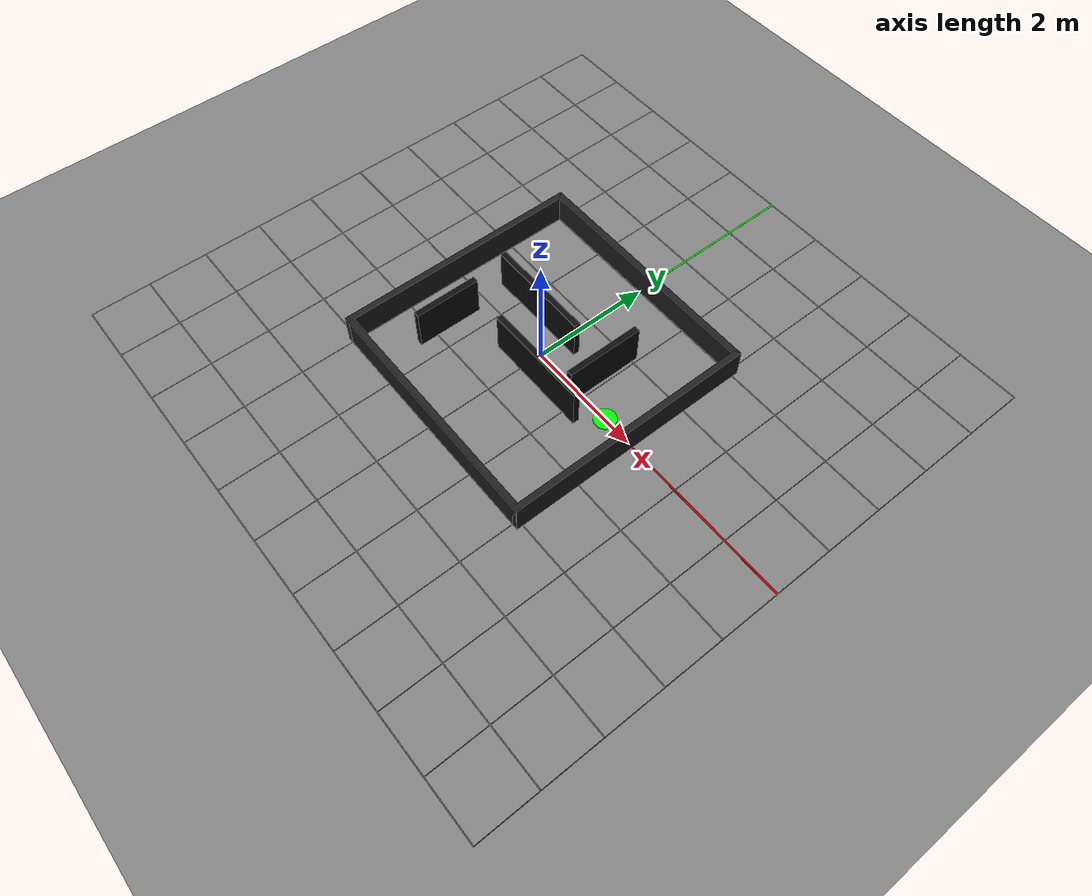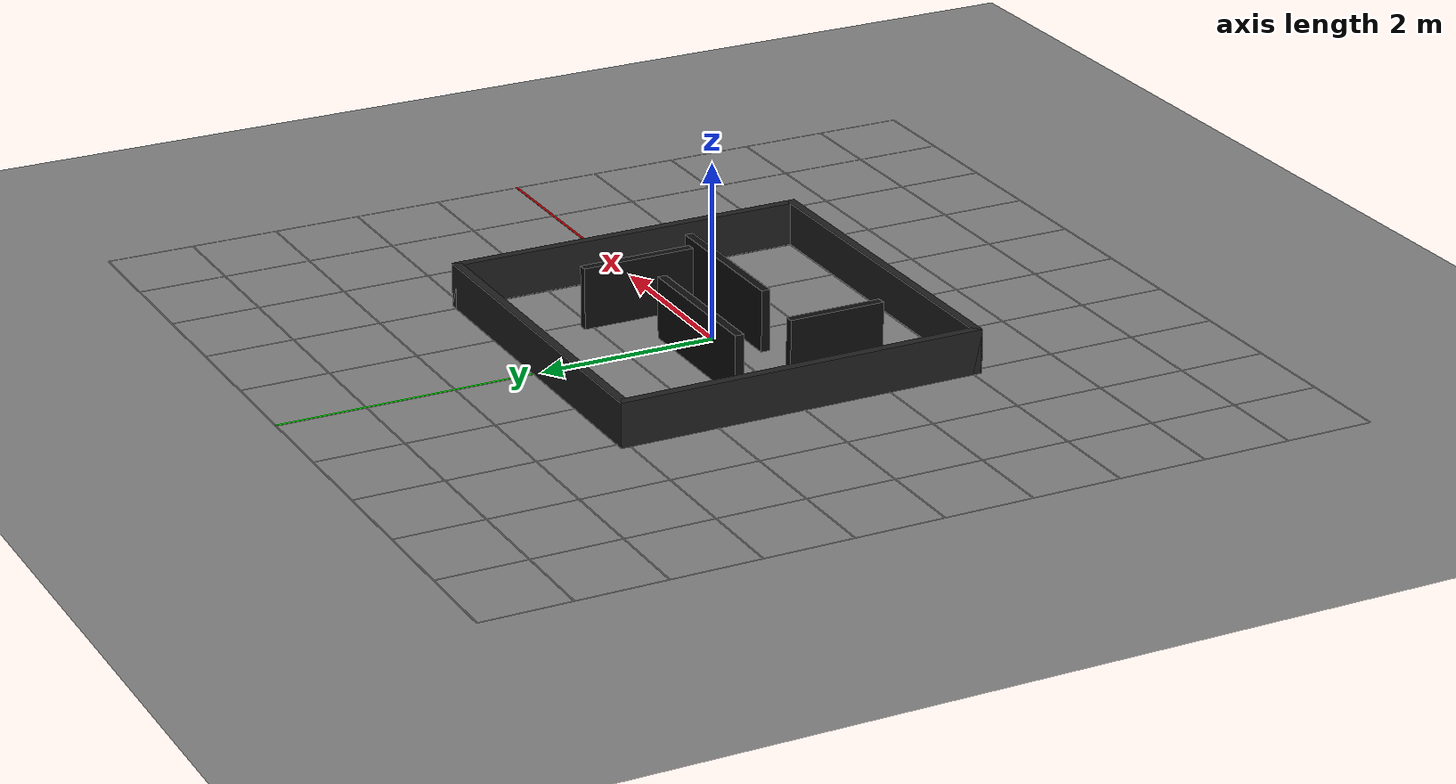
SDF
<?xml version="1.0" ?>
<sdf version="1.6">
    <world name="d3im3r_stage_07_simple_maze">

        <plugin name="gazebo_ros_state" filename="libgazebo_ros_state.so">
            <ros>
                <namespace>/gazebo</namespace>
            </ros>
            <update_rate>20.0</update_rate>
        </plugin>

        <light name="sun" type="directional">
            <cast_shadows>true</cast_shadows>
            <pose>0 0 10 0 0 0</pose>
            <diffuse>0.8 0.8 0.8 1</diffuse>
            <specular>0.2 0.2 0.2 1</specular>
            <direction>-0.5 0.1 -0.9</direction>
        </light>

        <model name="ground_plane">
            <static>true</static>
            <link name="link">
                <collision name="collision">
                    <geometry>
                        <plane>
                            <normal>0 0 1</normal>
                            <size>10 10</size>
                        </plane>
                    </geometry>
                </collision>
                <visual name="visual">
                    <geometry>
                        <plane>
                            <normal>0 0 1</normal>
                            <size>10 10</size>
                        </plane>
                    </geometry>
                    <material>
                        <ambient>0.5 0.5 0.5 1</ambient>
                        <diffuse>0.5 0.5 0.5 1</diffuse>
                    </material>
                </visual>
            </link>
        </model>

        <include>
            <uri>model://d3im3r_grid</uri>
            <pose>0 0 0 0 0 0</pose>
        </include>

        <include>
            <uri>model://d3im3r_arena_walls</uri>
            <pose>0 0 0 0 0 0</pose>
        </include>

        <model name="goal_marker">
    <static>false</static>

    <pose>1.5 0.0 0.03 0 0 0</pose>

    <link name="link">
        <gravity>false</gravity>
        <kinematic>true</kinematic>

        <visual name="visual">
            <geometry>
                <cylinder>
                    <radius>0.18</radius>
                    <length>0.02</length>
                </cylinder>
            </geometry>
            <material>
                <ambient>0.0 1.0 0.0 1.0</ambient>
                <diffuse>0.0 1.0 0.0 1.0</diffuse>
            </material>
        </visual>
    </link>
</model>

        <model name="wall_1">
            <static>true</static>
            <pose>-0.6 0.45 0.35 0 0 0</pose>
            <link name="link">
                <collision name="collision">
                    <geometry>
                        <box>
                            <size>1.80 0.10 0.70</size>
                        </box>
                    </geometry>
                </collision>
                <visual name="visual">
                    <geometry>
                        <box>
                            <size>1.80 0.10 0.70</size>
                        </box>
                    </geometry>
                    <material>
                        <ambient>0.05 0.05 0.05 1</ambient>
                        <diffuse>0.05 0.05 0.05 1</diffuse>
                    </material>
                </visual>
            </link>
        </model>

        <model name="wall_2">
            <static>true</static>
            <pose>0.35 -0.35 0.35 0 0 0</pose>
            <link name="link">
                <collision name="collision">
                    <geometry>
                        <box>
                            <size>1.80 0.10 0.70</size>
                        </box>
                    </geometry>
                </collision>
                <visual name="visual">
                    <geometry>
                        <box>
                            <size>1.80 0.10 0.70</size>
                        </box>
                    </geometry>
                    <material>
                        <ambient>0.05 0.05 0.05 1</ambient>
                        <diffuse>0.05 0.05 0.05 1</diffuse>
                    </material>
                </visual>
            </link>
        </model>

        <model name="wall_3">
            <static>true</static>
            <pose>0.9 0.45 0.35 0 0 1.5708</pose>
            <link name="link">
                <collision name="collision">
                    <geometry>
                        <box>
                            <size>1.30 0.10 0.70</size>
                        </box>
                    </geometry>
                </collision>
                <visual name="visual">
                    <geometry>
                        <box>
                            <size>1.30 0.10 0.70</size>
                        </box>
                    </geometry>
                    <material>
                        <ambient>0.05 0.05 0.05 1</ambient>
                        <diffuse>0.05 0.05 0.05 1</diffuse>
                    </material>
                </visual>
            </link>
        </model>

        <model name="wall_4">
            <static>true</static>
            <pose>-1.35 -0.75 0.35 0 0 1.5708</pose>
            <link name="link">
                <collision name="collision">
                    <geometry>
                        <box>
                            <size>1.10 0.10 0.70</size>
                        </box>
                    </geometry>
                </collision>
                <visual name="visual">
                    <geometry>
                        <box>
                            <size>1.10 0.10 0.70</size>
                        </box>
                    </geometry>
                    <material>
                        <ambient>0.05 0.05 0.05 1</ambient>
                        <diffuse>0.05 0.05 0.05 1</diffuse>
                    </material>
                </visual>
            </link>
        </model>

    </world>
</sdf>

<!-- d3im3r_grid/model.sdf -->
<sdf version="1.6">
    <model name="d3im3r_grid">
        <static>true</static>

        <!-- Lines parallel to X axis: y = constant -->
        <link name="grid_x">
            <visual name="x_-5">
                <pose>0 -5 0.006 0 0 0</pose>
                <geometry>
                    <box>
                        <size>10 0.015 0.002</size>
                    </box>
                </geometry>
                <material>
                    <ambient>0.05 0.05 0.05 1</ambient>
                    <diffuse>0.05 0.05 0.05 1</diffuse>
                </material>
            </visual>

            <visual name="x_-4">
                <pose>0 -4 0.006 0 0 0</pose>
                <geometry>
                    <box>
                        <size>10 0.015 0.002</size>
                    </box>
                </geometry>
                <material>
                    <ambient>0.05 0.05 0.05 1</ambient>
                    <diffuse>0.05 0.05 0.05 1</diffuse>
                </material>
            </visual>

            <visual name="x_-3">
                <pose>0 -3 0.006 0 0 0</pose>
                <geometry>
                    <box>
                        <size>10 0.015 0.002</size>
                    </box>
                </geometry>
                <material>
                    <ambient>0.05 0.05 0.05 1</ambient>
                    <diffuse>0.05 0.05 0.05 1</diffuse>
                </material>
            </visual>

            <visual name="x_-2">
                <pose>0 -2 0.006 0 0 0</pose>
                <geometry>
                    <box>
                        <size>10 0.015 0.002</size>
                    </box>
                </geometry>
                <material>
                    <ambient>0.05 0.05 0.05 1</ambient>
                    <diffuse>0.05 0.05 0.05 1</diffuse>
                </material>
            </visual>

            <visual name="x_-1">
                <pose>0 -1 0.006 0 0 0</pose>
                <geometry>
                    <box>
                        <size>10 0.015 0.002</size>
                    </box>
                </geometry>
                <material>
                    <ambient>0.05 0.05 0.05 1</ambient>
                    <diffuse>0.05 0.05 0.05 1</diffuse>
                </material>
            </visual>

            <!-- Positive X axis: from x = 0 to x = 5, y = 0 -->
            <visual name="positive_x_axis">
                <pose>2.5 0 0.008 0 0 0</pose>
                <geometry>
                    <box>
                        <size>5 0.030 0.004</size>
                    </box>
                </geometry>
                <material>
                    <ambient>0.8 0.0 0.0 1</ambient>
                    <diffuse>0.8 0.0 0.0 1</diffuse>
                </material>
            </visual>

            <!-- Negative side of y = 0 remains as a normal grid line -->
            <visual name="negative_x_axis_grid">
                <pose>-2.5 0 0.006 0 0 0</pose>
                <geometry>
                    <box>
                        <size>5 0.015 0.002</size>
                    </box>
                </geometry>
                <material>
                    <ambient>0.05 0.05 0.05 1</ambient>
                    <diffuse>0.05 0.05 0.05 1</diffuse>
                </material>
            </visual>

            <visual name="x_1">
                <pose>0 1 0.006 0 0 0</pose>
                <geometry>
                    <box>
                        <size>10 0.015 0.002</size>
                    </box>
                </geometry>
                <material>
                    <ambient>0.05 0.05 0.05 1</ambient>
                    <diffuse>0.05 0.05 0.05 1</diffuse>
                </material>
            </visual>

            <visual name="x_2">
                <pose>0 2 0.006 0 0 0</pose>
                <geometry>
                    <box>
                        <size>10 0.015 0.002</size>
                    </box>
                </geometry>
                <material>
                    <ambient>0.05 0.05 0.05 1</ambient>
                    <diffuse>0.05 0.05 0.05 1</diffuse>
                </material>
            </visual>

            <visual name="x_3">
                <pose>0 3 0.006 0 0 0</pose>
                <geometry>
                    <box>
                        <size>10 0.015 0.002</size>
                    </box>
                </geometry>
                <material>
                    <ambient>0.05 0.05 0.05 1</ambient>
                    <diffuse>0.05 0.05 0.05 1</diffuse>
                </material>
            </visual>

            <visual name="x_4">
                <pose>0 4 0.006 0 0 0</pose>
                <geometry>
                    <box>
                        <size>10 0.015 0.002</size>
                    </box>
                </geometry>
                <material>
                    <ambient>0.05 0.05 0.05 1</ambient>
                    <diffuse>0.05 0.05 0.05 1</diffuse>
                </material>
            </visual>

            <visual name="x_5">
                <pose>0 5 0.006 0 0 0</pose>
                <geometry>
                    <box>
                        <size>10 0.015 0.002</size>
                    </box>
                </geometry>
                <material>
                    <ambient>0.05 0.05 0.05 1</ambient>
                    <diffuse>0.05 0.05 0.05 1</diffuse>
                </material>
            </visual>
        </link>

        <!-- Lines parallel to Y axis: x = constant -->
        <link name="grid_y">
            <visual name="y_-5">
                <pose>-5 0 0.006 0 0 0</pose>
                <geometry>
                    <box>
                        <size>0.015 10 0.002</size>
                    </box>
                </geometry>
                <material>
                    <ambient>0.05 0.05 0.05 1</ambient>
                    <diffuse>0.05 0.05 0.05 1</diffuse>
                </material>
            </visual>

            <visual name="y_-4">
                <pose>-4 0 0.006 0 0 0</pose>
                <geometry>
                    <box>
                        <size>0.015 10 0.002</size>
                    </box>
                </geometry>
                <material>
                    <ambient>0.05 0.05 0.05 1</ambient>
                    <diffuse>0.05 0.05 0.05 1</diffuse>
                </material>
            </visual>

            <visual name="y_-3">
                <pose>-3 0 0.006 0 0 0</pose>
                <geometry>
                    <box>
                        <size>0.015 10 0.002</size>
                    </box>
                </geometry>
                <material>
                    <ambient>0.05 0.05 0.05 1</ambient>
                    <diffuse>0.05 0.05 0.05 1</diffuse>
                </material>
            </visual>

            <visual name="y_-2">
                <pose>-2 0 0.006 0 0 0</pose>
                <geometry>
                    <box>
                        <size>0.015 10 0.002</size>
                    </box>
                </geometry>
                <material>
                    <ambient>0.05 0.05 0.05 1</ambient>
                    <diffuse>0.05 0.05 0.05 1</diffuse>
                </material>
            </visual>

            <visual name="y_-1">
                <pose>-1 0 0.006 0 0 0</pose>
                <geometry>
                    <box>
                        <size>0.015 10 0.002</size>
                    </box>
                </geometry>
                <material>
                    <ambient>0.05 0.05 0.05 1</ambient>
                    <diffuse>0.05 0.05 0.05 1</diffuse>
                </material>
            </visual>

            <!-- Positive Y axis: from y = 0 to y = 5, x = 0 -->
            <visual name="positive_y_axis">
                <pose>0 2.5 0.008 0 0 0</pose>
                <geometry>
                    <box>
                        <size>0.030 5 0.004</size>
                    </box>
                </geometry>
                <material>
                    <ambient>0.0 0.8 0.0 1</ambient>
                    <diffuse>0.0 0.8 0.0 1</diffuse>
                </material>
            </visual>

            <!-- Negative side of x = 0 remains as a normal grid line -->
            <visual name="negative_y_axis_grid">
                <pose>0 -2.5 0.006 0 0 0</pose>
                <geometry>
                    <box>
                        <size>0.015 5 0.002</size>
                    </box>
                </geometry>
                <material>
                    <ambient>0.05 0.05 0.05 1</ambient>
                    <diffuse>0.05 0.05 0.05 1</diffuse>
                </material>
            </visual>

            <visual name="y_1">
                <pose>1 0 0.006 0 0 0</pose>
                <geometry>
                    <box>
                        <size>0.015 10 0.002</size>
                    </box>
                </geometry>
                <material>
                    <ambient>0.05 0.05 0.05 1</ambient>
                    <diffuse>0.05 0.05 0.05 1</diffuse>
                </material>
            </visual>

            <visual name="y_2">
                <pose>2 0 0.006 0 0 0</pose>
                <geometry>
                    <box>
                        <size>0.015 10 0.002</size>
                    </box>
                </geometry>
                <material>
                    <ambient>0.05 0.05 0.05 1</ambient>
                    <diffuse>0.05 0.05 0.05 1</diffuse>
                </material>
            </visual>

            <visual name="y_3">
                <pose>3 0 0.006 0 0 0</pose>
                <geometry>
                    <box>
                        <size>0.015 10 0.002</size>
                    </box>
                </geometry>
                <material>
                    <ambient>0.05 0.05 0.05 1</ambient>
                    <diffuse>0.05 0.05 0.05 1</diffuse>
                </material>
            </visual>

            <visual name="y_4">
                <pose>4 0 0.006 0 0 0</pose>
                <geometry>
                    <box>
                        <size>0.015 10 0.002</size>
                    </box>
                </geometry>
                <material>
                    <ambient>0.05 0.05 0.05 1</ambient>
                    <diffuse>0.05 0.05 0.05 1</diffuse>
                </material>
            </visual>

            <visual name="y_5">
                <pose>5 0 0.006 0 0 0</pose>
                <geometry>
                    <box>
                        <size>0.015 10 0.002</size>
                    </box>
                </geometry>
                <material>
                    <ambient>0.05 0.05 0.05 1</ambient>
                    <diffuse>0.05 0.05 0.05 1</diffuse>
                </material>
            </visual>
        </link>

    </model>
</sdf>

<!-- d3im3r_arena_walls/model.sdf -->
<sdf version="1.6">
    <model name="d3im3r_arena_walls">
        <static>true</static>

        <!--
            Arena limits:
            x: -2.0 to 2.0
            y: -2.0 to 2.0

            Wall thickness: 0.10 m
            Wall height:    0.50 m
        -->

        <!-- North wall: y = +2.0 -->
        <link name="north_wall">
            <pose>0 2.05 0.25 0 0 0</pose>

            <collision name="collision">
                <geometry>
                    <box>
                        <size>4.2 0.10 0.50</size>
                    </box>
                </geometry>
            </collision>

            <visual name="visual">
                <geometry>
                    <box>
                        <size>4.2 0.10 0.50</size>
                    </box>
                </geometry>
                <material>
                    <ambient>0.12 0.12 0.12 1</ambient>
                    <diffuse>0.12 0.12 0.12 1</diffuse>
                </material>
            </visual>
        </link>

        <!-- South wall: y = -2.0 -->
        <link name="south_wall">
            <pose>0 -2.05 0.25 0 0 0</pose>

            <collision name="collision">
                <geometry>
                    <box>
                        <size>4.2 0.10 0.50</size>
                    </box>
                </geometry>
            </collision>

            <visual name="visual">
                <geometry>
                    <box>
                        <size>4.2 0.10 0.50</size>
                    </box>
                </geometry>
                <material>
                    <ambient>0.12 0.12 0.12 1</ambient>
                    <diffuse>0.12 0.12 0.12 1</diffuse>
                </material>
            </visual>
        </link>

        <!-- East wall: x = +2.0 -->
        <link name="east_wall">
            <pose>2.05 0 0.25 0 0 0</pose>

            <collision name="collision">
                <geometry>
                    <box>
                        <size>0.10 4.2 0.50</size>
                    </box>
                </geometry>
            </collision>

            <visual name="visual">
                <geometry>
                    <box>
                        <size>0.10 4.2 0.50</size>
                    </box>
                </geometry>
                <material>
                    <ambient>0.12 0.12 0.12 1</ambient>
                    <diffuse>0.12 0.12 0.12 1</diffuse>
                </material>
            </visual>
        </link>

        <!-- West wall: x = -2.0 -->
        <link name="west_wall">
            <pose>-2.05 0 0.25 0 0 0</pose>

            <collision name="collision">
                <geometry>
                    <box>
                        <size>0.10 4.2 0.50</size>
                    </box>
                </geometry>
            </collision>

            <visual name="visual">
                <geometry>
                    <box>
                        <size>0.10 4.2 0.50</size>
                    </box>
                </geometry>
                <material>
                    <ambient>0.12 0.12 0.12 1</ambient>
                    <diffuse>0.12 0.12 0.12 1</diffuse>
                </material>
            </visual>
        </link>

    </model>
</sdf>
